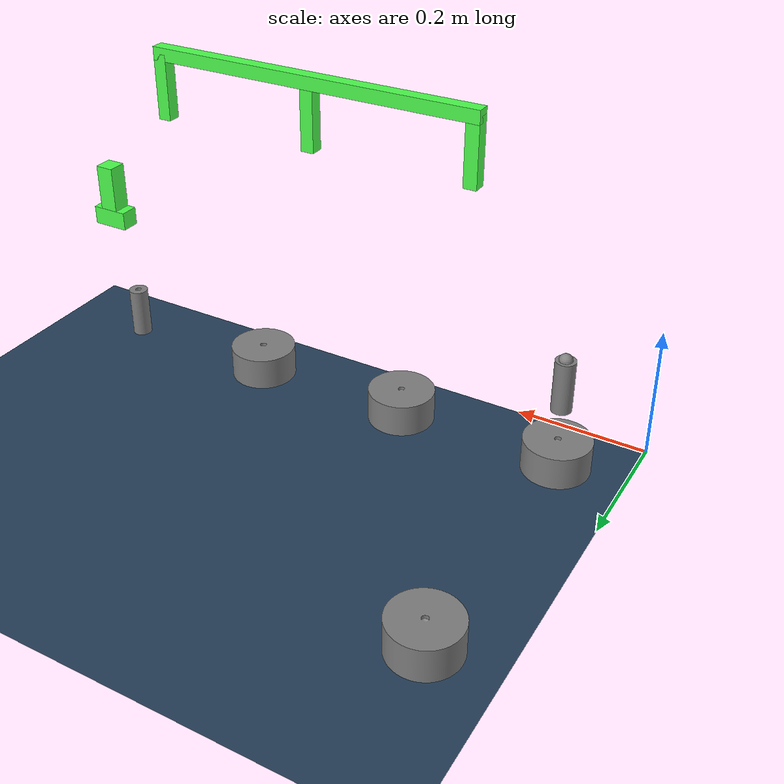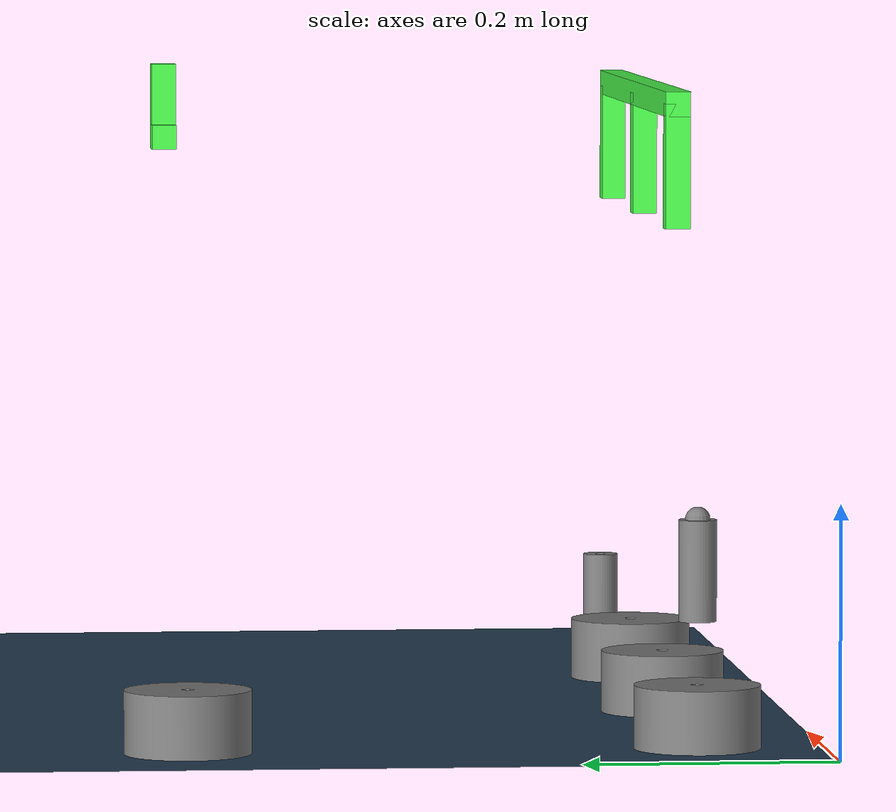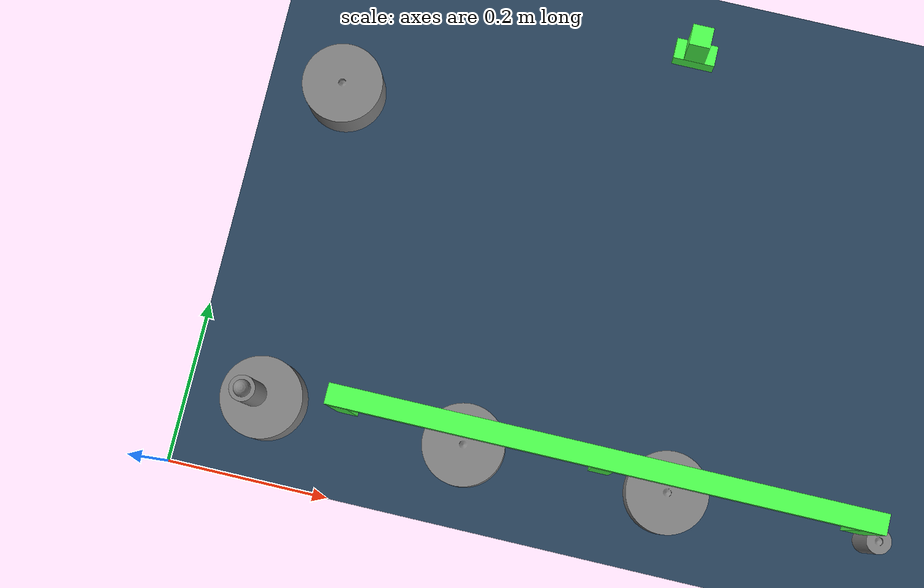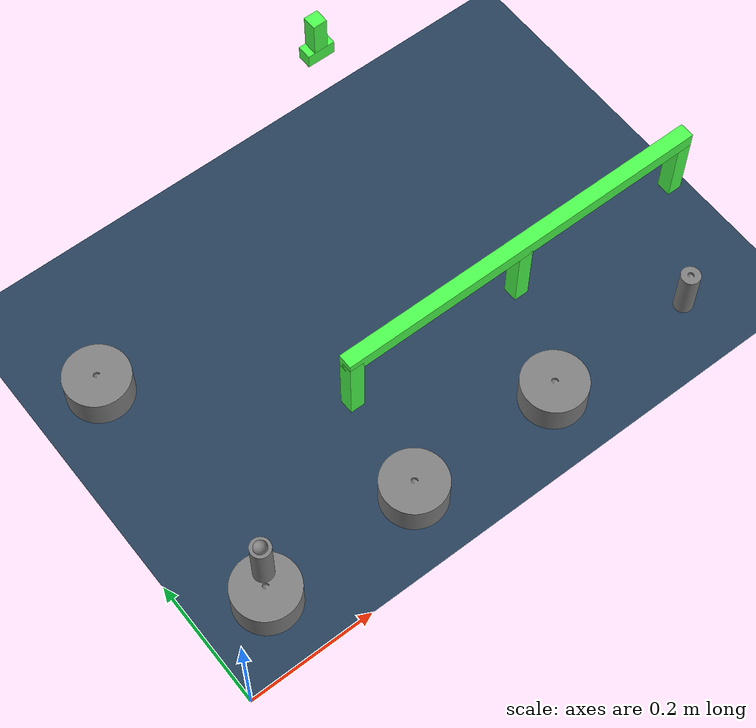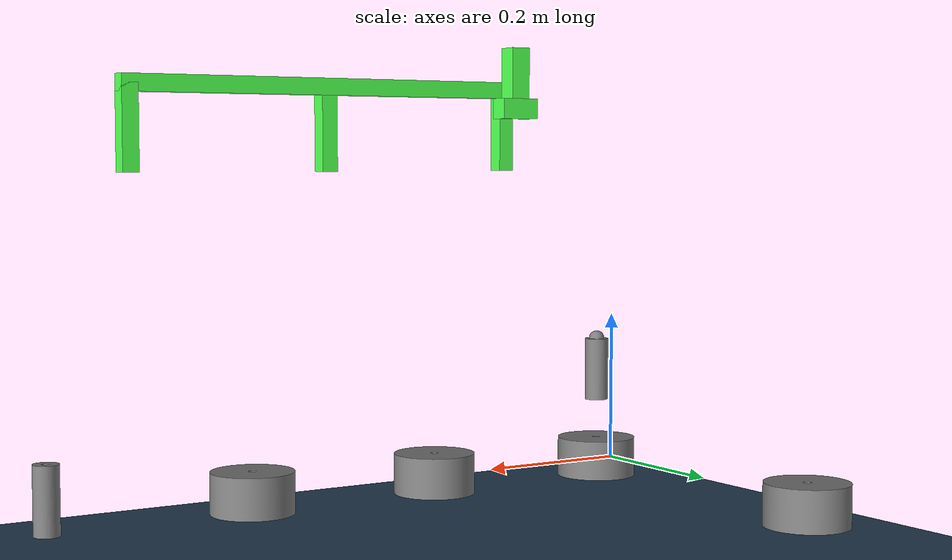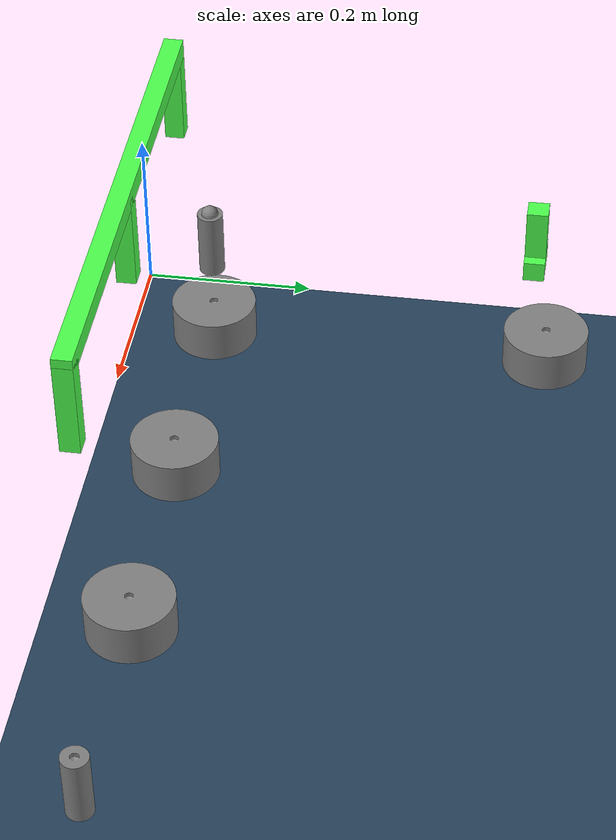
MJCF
<?xml version="1.0" ?>
<mujoco>
  <!-- python no this attribute -->
  <!-- compiler autolimits="true"/ -->

  <asset>
    <texture name="grid" type="2d" builtin="checker" width="512" height="512" rgb1=".1 .2 .3" rgb2=".2 .3 .4"/>
    <material name="grid" texture="grid" texrepeat="2 2" texuniform="true" reflectance=".2"/>
    <texture name="plate" type="2d" builtin="flat" width="512" height="512" rgb1=".7 .7 .7" rgb2=".2 .3 .4"/>
    <material name="plate" texture="plate" texuniform="true" reflectance=".5"/>
    <mesh name="inspection_arm" scale=".01 .01 .01"
      vertex="-10  1   5
              -10 -1   5
               10  1   5
               10 -1   5
              -10  1  -5
              -10 -1  -5
              -8   1  -5
              -8  -1  -5
               10  1  -5
               10 -1  -5
               8   1  -5
               8  -1  -5
              -8   1   3
              -8  -1   3
              -1   1   3
              -1  -1   3
               8   1   3
               8  -1   3
               1   1   3
               1  -1   3
              -1   1  -5
              -1  -1  -5
               1   1  -5
               1  -1  -5"/>
    <mesh name="station_mesh" file="/home/kyle/workspaces/mujoco-3.2.2/model/Lar_T/station_mesh.stl" scale=".001 .001 .001"/>
    <mesh name="movable_mesh" file="/home/kyle/workspaces/mujoco-3.2.2/model/Lar_T/movable_mesh.stl" scale=".001 .001 .001"/>
    <mesh name="suction_mesh" file="/home/kyle/workspaces/mujoco-3.2.2/model/Lar_T/suction_mesh.stl" scale=".001 .001 .001"/>
  </asset>

  <default>
    <!-- python no the actuatorfrcrange attribute -->
    <!-- joint damping=".03" actuatorfrcrange="-0.5 0.5"/ -->
    <joint damping=".03"/>
    <!-- replaced by imported obj -->
    <default class="station">
      <geom type="cylinder" size=".05 .025" rgba=".1 .1 .1 1"/>
    </default>
    <default class="movable_bearer">
      <geom type="cylinder" size=".015 .04" rgba=".5 .5 1 1"/>
    </default>
  </default>

  <worldbody>
    <geom type="plane" size="0.5 0.5 .01" material="grid" pos="0.5 0.5 0"/>
    <light name="top light" pos="0.5 0.5 2" diffuse=".8 .8 .8"/>

    <!-- fixed stations -->
    <body name="D" pos="0.1 0.1 0">
      <!-- geom class="station" /-->
      <geom type="mesh" mesh="station_mesh"/>
    </body>
    <body name="A" pos="0.35 0.1 0">
      <geom type="mesh" mesh="station_mesh"/>
    </body>
    <body name="MTF" pos="0.6 0.1 0">
      <geom type="mesh" mesh="station_mesh"/>
    </body>
    <body name="D_buf2" pos="0.1 0.5 0">
      <geom type="mesh" mesh="station_mesh"/>
    </body>

    <!-- plate -->
    <body name="plate_process" pos="0.5 0.4 0">
      <geom type="plane" size="0.15 0.075 .01" material="plate"/>
    </body>
    <body name="plate_product" pos="0.5 0.6 0">
      <geom type="plane" size="0.15 0.075 .01" material="plate"/>
    </body>

    <!-- inspection_arm -->
    <body name="inspectio_arm_main" pos="0.5 0.1 0.5">
      <!-- both side increase 1 cm in x direction -->
      <geom type="box" size="0.26 0.01 0.01" rgba="0.3 1.0 0.3 1"/>
      <body name="inspectio_arm_left" pos="-0.25 0 -0.05" euler="0 180 0">
        <geom type="box" size="0.01 0.01 0.05" rgba="0.3 1.0 0.3 1"/>
      </body>
      <body name="inspectio_arm_middle" pos="0 0 -0.05" euler="0 180 0">
        <geom type="box" size="0.01 0.01 0.05" rgba="0.3 1.0 0.3 1"/>
      </body>
      <body name="inspectio_arm_right" pos="0.25 0 -0.05" euler="0 180 0">
        <geom type="box" size="0.01 0.01 0.05" rgba="0.3 1.0 0.3 1"/>
      </body>
    </body>

    <!-- T-bar -->
    <body name="T-bar_main" pos="0.5 0.5 0.5">
      <!-- both side increase 1 cm in x direction -->
      <geom type="box" size="0.01 0.01 0.025" rgba="0.3 1.0 0.3 1"/>
      <body name="T-bar_left" pos="0 0 -0.025" euler="0 180 0">
        <geom type="mesh" mesh="suction_mesh" rgba="0.3 1.0 0.3 1"/>
      </body>
    </body>

    <!-- movable_bearer -->
    <body name="roate_beaer_base" pos="0.1 0.1 0.18">
      <joint name="rotate_bearer_slide_joint" type="slide" axis="0 1 0"/>
      <geom type="sphere" size="0.01"/>
        <body name="rotate_bearer" pos="0 0 0" euler="0 180 0">
          <!-- mass is important, the unit system I used is MKS,
          official explane that 1000 is 1 kg-->
          <geom type="mesh" mesh="movable_mesh" mass="100.0"/>
          <joint name="rotate_bearer_hinge_joint" type="hinge" axis="0 1 0"/>
        </body>
      </body>
    <body name="blow_bearer" pos="0.85 0.1 0.001">
      <geom type="mesh" mesh="movable_mesh"/>
      <joint name="blow_bearer_joint" type="slide" axis="0 1 0"/>
    </body>

  </worldbody>

  <actuator>
    <!-- postion can only set kp, add velocity kv -->
    <position joint="rotate_bearer_slide_joint" kp="1000" ctrlrange="0 0.8"/>
    <velocity joint="rotate_bearer_slide_joint" kv="500"/>
    <position joint="rotate_bearer_hinge_joint" kp="100" ctrlrange="0 3.14"/>
    <velocity joint="rotate_bearer_hinge_joint" kv="5"/>
    <position joint="blow_bearer_joint" kp="10" ctrlrange="0 0.8"/>
    <velocity joint="blow_bearer_joint" kv="2"/>
  </actuator>

  <sensor>
  </sensor>
</mujoco>
